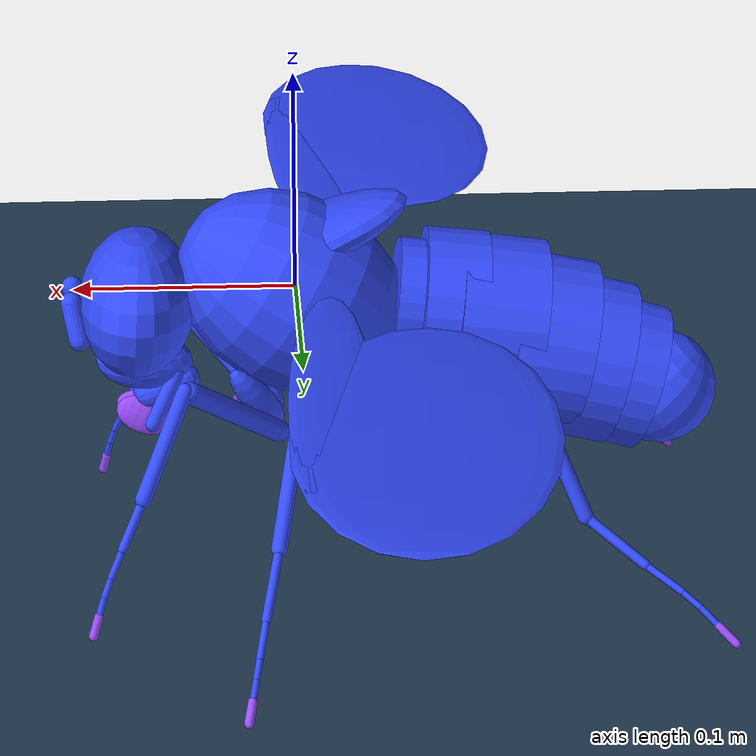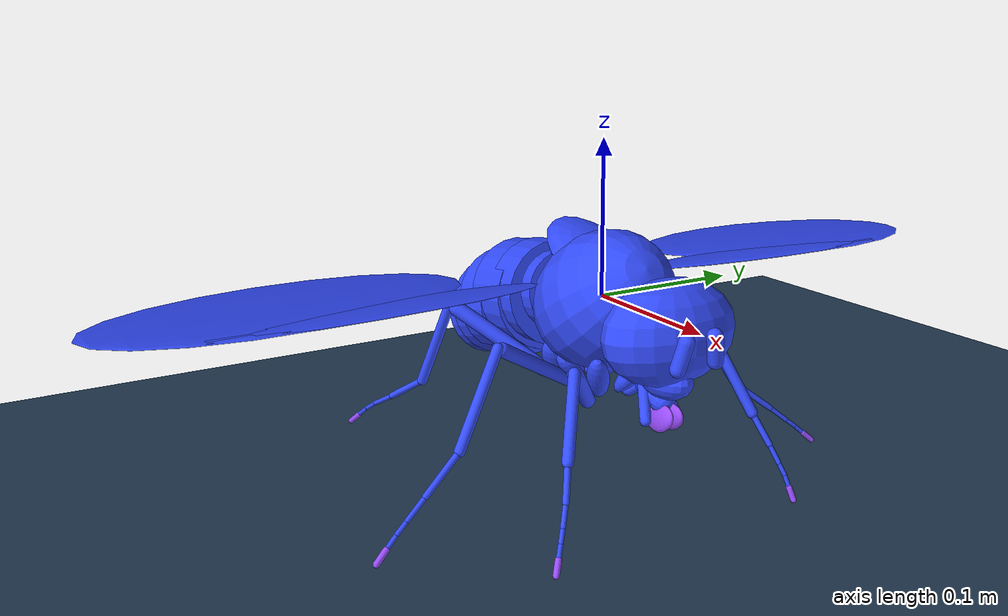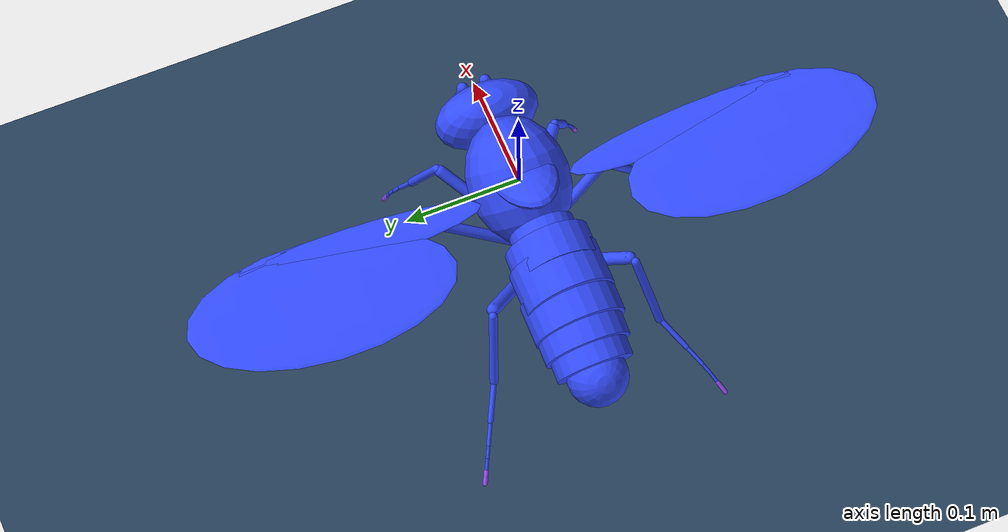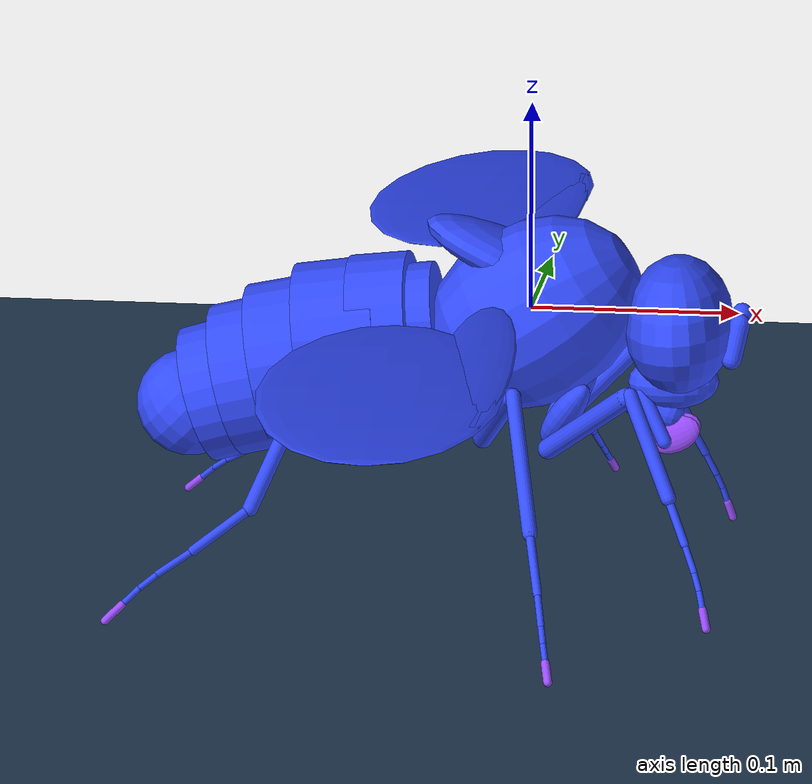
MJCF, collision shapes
<mujoco model="fruitfly scene">
  <include file="fruitfly.xml"/>

  <visual>
    <global offwidth="3840" offheight="2160" azimuth="140" elevation="-20"/>
    <quality shadowsize="8192" offsamples="24"/>
    <headlight ambient="0.4 0.4 0.4" diffuse="0.8 0.8 0.8" specular="0.1 0.1 0.1"/>
    <map stiffness="1e+04" stiffnessrot="5e+04" force="2e-05"/>
    <scale jointwidth="0.01" framewidth="0.01"/>
  </visual>

  <statistic meansize="0.02" extent=".3" center="0 -0.1 -0.06"/>

  <asset>
    <texture name="grid" type="2d" builtin="checker" rgb1=".1 .2 .3" rgb2=".2 .3 .4" width="300" height="300"
      mark="edge" markrgb=".2 .3 .4"/>
    <material name="grid" texture="grid" texrepeat="1 1" texuniform="true" reflectance=".2"/>
    <texture name="skybox" type="skybox" builtin="gradient" rgb1=".4 .6 .8" rgb2="0 0 0" width="100" height="100"/>
  </asset>

  <worldbody>
    <geom name="floor" type="plane" size="5 5 .1" material="grid" pos="0 0 -.132" solref="0.0002 1"/>
  </worldbody>
</mujoco>
